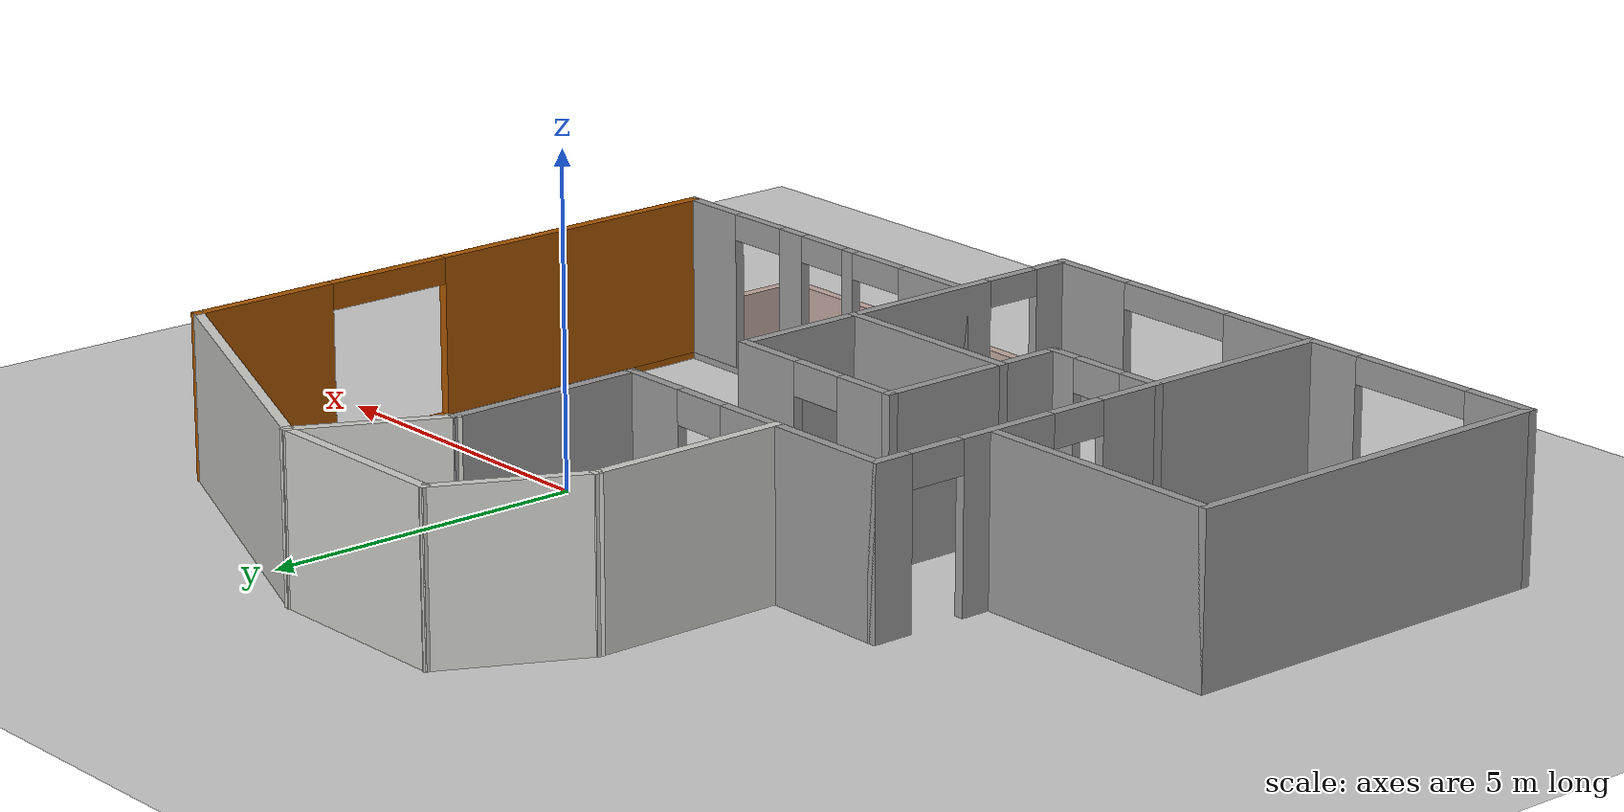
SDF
<sdf version="1.6">
 <world name="default">
  <model name="ground_plane">
   <static>1</static>
   <link name="link">
    <collision name="collision">
     <geometry><plane><normal>0 0 1</normal><size>100 100</size></plane></geometry>
     <surface><friction><ode><mu>100</mu><mu2>50</mu2></ode></friction></surface>
    </collision>
    <visual name="visual">
     <cast_shadows>0</cast_shadows>
     <geometry><plane><normal>0 0 1</normal><size>100 100</size></plane></geometry>
     <material>
      <script><uri>file://media/materials/scripts/gazebo.material</uri><name>Gazebo/Grey</name></script>
     </material>
    </visual>
   </link>
  </model>
  <model name="Building">
   <pose>-3.80091 -0.843794 0 0 -0 0</pose>
   <link name="Wall_0">
    <collision name="Wall_0_Collision">
     <geometry><box><size>6.15 0.15 2.5</size></box></geometry>
     <pose>0 0 1.25 0 -0 0</pose>
    </collision>
    <visual name="Wall_0_Visual">
     <pose>0 0 1.25 0 -0 0</pose>
     <geometry><box><size>6.15 0.15 2.5</size></box></geometry>
     <material>
      <script><uri>file://media/materials/scripts/gazebo.material</uri><name>Gazebo/Grey</name></script>
      <ambient>1 1 1 1</ambient>
     </material>
     <meta><layer>0</layer></meta>
    </visual>
    <pose>-7.51124 -3.51281 0 0 -0 1.5708</pose>
   </link>
   <link name="Wall_12">
    <pose>-3.01125 -6.51281 0 0 -0 0</pose>
    <visual name="Wall_12_Visual_0">
     <pose>-3.99854 0 1.25 0 -0 0</pose>
     <geometry><box><size>1.15292 0.15 2.5</size></box></geometry>
     <material>
      <script><uri>file://media/materials/scripts/gazebo.material</uri><name>Gazebo/Grey</name></script>
      <ambient>1 1 1 1</ambient>
     </material>
     <meta><layer>0</layer></meta>
    </visual>
    <collision name="Wall_12_Collision_0">
     <geometry><box><size>1.15292 0.15 2.5</size></box></geometry>
     <pose>-3.99854 0 1.25 0 -0 0</pose>
    </collision>
    <visual name="Wall_12_Visual_1">
     <pose>0.57646 0 0.05 0 -0 0</pose>
     <geometry><box><size>7.99708 0.15 0.1</size></box></geometry>
     <material>
      <script><uri>file://media/materials/scripts/gazebo.material</uri><name>Gazebo/Grey</name></script>
      <ambient>1 1 1 1</ambient>
     </material>
     <meta><layer>0</layer></meta>
    </visual>
    <collision name="Wall_12_Collision_1">
     <geometry><box><size>7.99708 0.15 0.1</size></box></geometry>
     <pose>0.57646 0 0.05 0 -0 0</pose>
    </collision>
    <visual name="Wall_12_Visual_2">
     <pose>-0.143108 0 1.3 0 -0 0</pose>
     <geometry><box><size>2.55794 0.15 2.4</size></box></geometry>
     <material>
      <script><uri>file://media/materials/scripts/gazebo.material</uri><name>Gazebo/Grey</name></script>
      <ambient>1 1 1 1</ambient>
     </material>
     <meta><layer>0</layer></meta>
    </visual>
    <collision name="Wall_12_Collision_2">
     <geometry><box><size>2.55794 0.15 2.4</size></box></geometry>
     <pose>-0.143108 0 1.3 0 -0 0</pose>
    </collision>
    <visual name="Wall_12_Visual_3">
     <pose>3.85543 0 1.3 0 -0 0</pose>
     <geometry><box><size>1.43914 0.15 2.4</size></box></geometry>
     <material>
      <script><uri>file://media/materials/scripts/gazebo.material</uri><name>Gazebo/Grey</name></script>
      <ambient>1 1 1 1</ambient>
     </material>
     <meta><layer>0</layer></meta>
    </visual>
    <collision name="Wall_12_Collision_3">
     <geometry><box><size>1.43914 0.15 2.4</size></box></geometry>
     <pose>3.85543 0 1.3 0 -0 0</pose>
    </collision>
    <visual name="Wall_12_Visual_4">
     <pose>-2.42208 0 2.3 0 -0 0</pose>
     <geometry><box><size>2 0.15 0.4</size></box></geometry>
     <material>
      <script><uri>file://media/materials/scripts/gazebo.material</uri><name>Gazebo/Grey</name></script>
      <ambient>1 1 1 1</ambient>
     </material>
     <meta><layer>0</layer></meta>
    </visual>
    <collision name="Wall_12_Collision_4">
     <geometry><box><size>2 0.15 0.4</size></box></geometry>
     <pose>-2.42208 0 2.3 0 -0 0</pose>
    </collision>
    <visual name="Wall_12_Visual_5">
     <pose>2.13586 0 2.3 0 -0 0</pose>
     <geometry><box><size>2 0.15 0.4</size></box></geometry>
     <material>
      <script><uri>file://media/materials/scripts/gazebo.material</uri><name>Gazebo/Grey</name></script>
      <ambient>1 1 1 1</ambient>
     </material>
     <meta><layer>0</layer></meta>
    </visual>
    <collision name="Wall_12_Collision_5">
     <geometry><box><size>2 0.15 0.4</size></box></geometry>
     <pose>2.13586 0 2.3 0 -0 0</pose>
    </collision>
   </link>
   <link name="Wall_26">
    <pose>1.48876 -3.51281 0 0 0 -1.5708</pose>
    <visual name="Wall_26_Visual_0">
     <pose>-0.780552 0 1.25 0 -0 0</pose>
     <geometry><box><size>4.58889 0.15 2.5</size></box></geometry>
     <material>
      <script><uri>file://media/materials/scripts/gazebo.material</uri><name>Gazebo/Grey</name></script>
      <ambient>1 1 1 1</ambient>
     </material>
     <meta><layer>0</layer></meta>
    </visual>
    <collision name="Wall_26_Collision_0">
     <geometry><box><size>4.58889 0.15 2.5</size></box></geometry>
     <pose>-0.780552 0 1.25 0 -0 0</pose>
    </collision>
    <visual name="Wall_26_Visual_1">
     <pose>2.29445 0 0.05 0 -0 0</pose>
     <geometry><box><size>1.5611 0.15 0.1</size></box></geometry>
     <material>
      <script><uri>file://media/materials/scripts/gazebo.material</uri><name>Gazebo/Grey</name></script>
      <ambient>1 1 1 1</ambient>
     </material>
     <meta><layer>0</layer></meta>
    </visual>
    <collision name="Wall_26_Collision_1">
     <geometry><box><size>1.5611 0.15 0.1</size></box></geometry>
     <pose>2.29445 0 0.05 0 -0 0</pose>
    </collision>
    <visual name="Wall_26_Visual_2">
     <pose>2.74445 0 1.3 0 -0 0</pose>
     <geometry><box><size>0.661105 0.15 2.4</size></box></geometry>
     <material>
      <script><uri>file://media/materials/scripts/gazebo.material</uri><name>Gazebo/Grey</name></script>
      <ambient>1 1 1 1</ambient>
     </material>
     <meta><layer>0</layer></meta>
    </visual>
    <collision name="Wall_26_Collision_2">
     <geometry><box><size>0.661105 0.15 2.4</size></box></geometry>
     <pose>2.74445 0 1.3 0 -0 0</pose>
    </collision>
    <visual name="Wall_26_Visual_3">
     <pose>1.96389 0 2.3 0 -0 0</pose>
     <geometry><box><size>0.9 0.15 0.4</size></box></geometry>
     <material>
      <script><uri>file://media/materials/scripts/gazebo.material</uri><name>Gazebo/Grey</name></script>
      <ambient>1 1 1 1</ambient>
     </material>
     <meta><layer>0</layer></meta>
    </visual>
    <collision name="Wall_26_Collision_3">
     <geometry><box><size>0.9 0.15 0.4</size></box></geometry>
     <pose>1.96389 0 2.3 0 -0 0</pose>
    </collision>
   </link>
   <link name="Wall_28">
    <collision name="Wall_28_Collision">
     <geometry><box><size>3.15 0.15 2.5</size></box></geometry>
     <pose>0 0 1.25 0 -0 0</pose>
    </collision>
    <visual name="Wall_28_Visual">
     <pose>0 0 1.25 0 -0 0</pose>
     <geometry><box><size>3.15 0.15 2.5</size></box></geometry>
     <material>
      <script><uri>file://media/materials/scripts/gazebo.material</uri><name>Gazebo/Grey</name></script>
      <ambient>1 1 1 1</ambient>
     </material>
     <meta><layer>0</layer></meta>
    </visual>
    <pose>1.48876 2.98719 0 0 -0 1.5708</pose>
   </link>
   <link name="Wall_30">
    <collision name="Wall_30_Collision">
     <geometry><box><size>2.38607 0.15 2.5</size></box></geometry>
     <pose>0 0 1.25 0 -0 0</pose>
    </collision>
    <visual name="Wall_30_Visual">
     <pose>0 0 1.25 0 -0 0</pose>
     <geometry><box><size>2.38607 0.15 2.5</size></box></geometry>
     <material>
      <script><uri>file://media/materials/scripts/gazebo.material</uri><name>Gazebo/CeilingTiled</name></script>
      <ambient>1 1 1 1</ambient>
     </material>
     <meta><layer>0</layer></meta>
    </visual>
    <pose>1.98876 5.48719 0 0 -0 1.10715</pose>
   </link>
   <link name="Wall_32">
    <pose>7.48876 -0.012811 0 0 0 -1.5708</pose>
    <visual name="Wall_32_Visual_0">
     <pose>-3.40699 0 1.25 0 -0 0</pose>
     <geometry><box><size>2.33601 0.15 2.5</size></box></geometry>
     <material>
      <script><uri>file://media/materials/scripts/gazebo.material</uri><name>Gazebo/Grey</name></script>
      <ambient>0.666667 0.333333 0 1</ambient>
     </material>
     <meta><layer>0</layer></meta>
    </visual>
    <collision name="Wall_32_Collision_0">
     <geometry><box><size>2.33601 0.15 2.5</size></box></geometry>
     <pose>-3.40699 0 1.25 0 -0 0</pose>
    </collision>
    <visual name="Wall_32_Visual_1">
     <pose>1.16801 0 0.05 0 -0 0</pose>
     <geometry><box><size>6.81399 0.15 0.1</size></box></geometry>
     <material>
      <script><uri>file://media/materials/scripts/gazebo.material</uri><name>Gazebo/Grey</name></script>
      <ambient>0.666667 0.333333 0 1</ambient>
     </material>
     <meta><layer>0</layer></meta>
    </visual>
    <collision name="Wall_32_Collision_1">
     <geometry><box><size>6.81399 0.15 0.1</size></box></geometry>
     <pose>1.16801 0 0.05 0 -0 0</pose>
    </collision>
    <visual name="Wall_32_Visual_2">
     <pose>2.16801 0 1.3 0 -0 0</pose>
     <geometry><box><size>4.81399 0.15 2.4</size></box></geometry>
     <material>
      <script><uri>file://media/materials/scripts/gazebo.material</uri><name>Gazebo/Grey</name></script>
      <ambient>0.666667 0.333333 0 1</ambient>
     </material>
     <meta><layer>0</layer></meta>
    </visual>
    <collision name="Wall_32_Collision_2">
     <geometry><box><size>4.81399 0.15 2.4</size></box></geometry>
     <pose>2.16801 0 1.3 0 -0 0</pose>
    </collision>
    <visual name="Wall_32_Visual_3">
     <pose>-1.23899 0 2.3 0 -0 0</pose>
     <geometry><box><size>2 0.15 0.4</size></box></geometry>
     <material>
      <script><uri>file://media/materials/scripts/gazebo.material</uri><name>Gazebo/Grey</name></script>
      <ambient>0.666667 0.333333 0 1</ambient>
     </material>
     <meta><layer>0</layer></meta>
    </visual>
    <collision name="Wall_32_Collision_3">
     <geometry><box><size>2 0.15 0.4</size></box></geometry>
     <pose>-1.23899 0 2.3 0 -0 0</pose>
    </collision>
   </link>
   <link name="Wall_34">
    <collision name="Wall_34_Collision">
     <geometry><box><size>6.15 0.15 0.8</size></box></geometry>
     <pose>0 0 0.4 0 -0 0</pose>
    </collision>
    <visual name="Wall_34_Visual">
     <pose>0 0 0.4 0 -0 0</pose>
     <geometry><box><size>6.15 0.15 0.8</size></box></geometry>
     <material>
      <script><uri>file://media/materials/scripts/gazebo.material</uri><name>Gazebo/Grey</name></script>
      <ambient>0.760784 0.662745 0.627451 1</ambient>
     </material>
     <meta><layer>0</layer></meta>
    </visual>
    <pose>4.48876 -6.51281 0 0 -0 0</pose>
   </link>
   <link name="Wall_36">
    <pose>4.48876 -4.51281 0 0 -0 0</pose>
    <visual name="Wall_36_Visual_0">
     <pose>-2.40473 0 1.25 0 -0 0</pose>
     <geometry><box><size>1.34055 0.15 2.5</size></box></geometry>
     <material>
      <script><uri>file://media/materials/scripts/gazebo.material</uri><name>Gazebo/Grey</name></script>
      <ambient>1 1 1 1</ambient>
     </material>
     <meta><layer>0</layer></meta>
    </visual>
    <collision name="Wall_36_Collision_0">
     <geometry><box><size>1.34055 0.15 2.5</size></box></geometry>
     <pose>-2.40473 0 1.25 0 -0 0</pose>
    </collision>
    <visual name="Wall_36_Visual_1">
     <pose>0.670272 0 0.05 0 -0 0</pose>
     <geometry><box><size>4.80945 0.15 0.1</size></box></geometry>
     <material>
      <script><uri>file://media/materials/scripts/gazebo.material</uri><name>Gazebo/Grey</name></script>
      <ambient>1 1 1 1</ambient>
     </material>
     <meta><layer>0</layer></meta>
    </visual>
    <collision name="Wall_36_Collision_1">
     <geometry><box><size>4.80945 0.15 0.1</size></box></geometry>
     <pose>0.670272 0 0.05 0 -0 0</pose>
    </collision>
    <visual name="Wall_36_Visual_2">
     <pose>-0.610532 0 1.3 0 -0 0</pose>
     <geometry><box><size>0.247846 0.15 2.4</size></box></geometry>
     <material>
      <script><uri>file://media/materials/scripts/gazebo.material</uri><name>Gazebo/Grey</name></script>
      <ambient>1 1 1 1</ambient>
     </material>
     <meta><layer>0</layer></meta>
    </visual>
    <collision name="Wall_36_Collision_2">
     <geometry><box><size>0.247846 0.15 2.4</size></box></geometry>
     <pose>-0.610532 0 1.3 0 -0 0</pose>
    </collision>
    <visual name="Wall_36_Visual_3">
     <pose>0.670143 0 1.3 0 -0 0</pose>
     <geometry><box><size>0.513504 0.15 2.4</size></box></geometry>
     <material>
      <script><uri>file://media/materials/scripts/gazebo.material</uri><name>Gazebo/Grey</name></script>
      <ambient>1 1 1 1</ambient>
     </material>
     <meta><layer>0</layer></meta>
    </visual>
    <collision name="Wall_36_Collision_3">
     <geometry><box><size>0.513504 0.15 2.4</size></box></geometry>
     <pose>0.670143 0 1.3 0 -0 0</pose>
    </collision>
    <visual name="Wall_36_Visual_4">
     <pose>2.50095 0 1.3 0 -0 0</pose>
     <geometry><box><size>1.1481 0.15 2.4</size></box></geometry>
     <material>
      <script><uri>file://media/materials/scripts/gazebo.material</uri><name>Gazebo/Grey</name></script>
      <ambient>1 1 1 1</ambient>
     </material>
     <meta><layer>0</layer></meta>
    </visual>
    <collision name="Wall_36_Collision_4">
     <geometry><box><size>1.1481 0.15 2.4</size></box></geometry>
     <pose>2.50095 0 1.3 0 -0 0</pose>
    </collision>
    <visual name="Wall_36_Visual_5">
     <pose>-1.23446 0 2.3 0 -0 0</pose>
     <geometry><box><size>1 0.15 0.4</size></box></geometry>
     <material>
      <script><uri>file://media/materials/scripts/gazebo.material</uri><name>Gazebo/Grey</name></script>
      <ambient>1 1 1 1</ambient>
     </material>
     <meta><layer>0</layer></meta>
    </visual>
    <collision name="Wall_36_Collision_5">
     <geometry><box><size>1 0.15 0.4</size></box></geometry>
     <pose>-1.23446 0 2.3 0 -0 0</pose>
    </collision>
    <visual name="Wall_36_Visual_6">
     <pose>-0.036609 0 2.3 0 -0 0</pose>
     <geometry><box><size>0.9 0.15 0.4</size></box></geometry>
     <material>
      <script><uri>file://media/materials/scripts/gazebo.material</uri><name>Gazebo/Grey</name></script>
      <ambient>1 1 1 1</ambient>
     </material>
     <meta><layer>0</layer></meta>
    </visual>
    <collision name="Wall_36_Collision_6">
     <geometry><box><size>0.9 0.15 0.4</size></box></geometry>
     <pose>-0.036609 0 2.3 0 -0 0</pose>
    </collision>
    <visual name="Wall_36_Visual_7">
     <pose>1.4269 0 2.3 0 -0 0</pose>
     <geometry><box><size>1 0.15 0.4</size></box></geometry>
     <material>
      <script><uri>file://media/materials/scripts/gazebo.material</uri><name>Gazebo/Grey</name></script>
      <ambient>1 1 1 1</ambient>
     </material>
     <meta><layer>0</layer></meta>
    </visual>
    <collision name="Wall_36_Collision_7">
     <geometry><box><size>1 0.15 0.4</size></box></geometry>
     <pose>1.4269 0 2.3 0 -0 0</pose>
    </collision>
   </link>
   <link name="Wall_38">
    <pose>-1.01124 1.48719 0 0 -0 0</pose>
    <visual name="Wall_38_Visual_0">
     <pose>-1.0103 0 1.25 0 -0 0</pose>
     <geometry><box><size>3.1294 0.15 2.5</size></box></geometry>
     <material>
      <script><uri>file://media/materials/scripts/gazebo.material</uri><name>Gazebo/Grey</name></script>
      <ambient>1 1 1 1</ambient>
     </material>
     <meta><layer>0</layer></meta>
    </visual>
    <collision name="Wall_38_Collision_0">
     <geometry><box><size>3.1294 0.15 2.5</size></box></geometry>
     <pose>-1.0103 0 1.25 0 -0 0</pose>
    </collision>
    <visual name="Wall_38_Visual_1">
     <pose>2.0147 0 1.25 0 -0 0</pose>
     <geometry><box><size>1.1206 0.15 2.5</size></box></geometry>
     <material>
      <script><uri>file://media/materials/scripts/gazebo.material</uri><name>Gazebo/Grey</name></script>
      <ambient>1 1 1 1</ambient>
     </material>
     <meta><layer>0</layer></meta>
    </visual>
    <collision name="Wall_38_Collision_1">
     <geometry><box><size>1.1206 0.15 2.5</size></box></geometry>
     <pose>2.0147 0 1.25 0 -0 0</pose>
    </collision>
    <visual name="Wall_38_Visual_2">
     <pose>1.0044 0 2.25 0 -0 0</pose>
     <geometry><box><size>0.9 0.15 0.5</size></box></geometry>
     <material>
      <script><uri>file://media/materials/scripts/gazebo.material</uri><name>Gazebo/Grey</name></script>
      <ambient>1 1 1 1</ambient>
     </material>
     <meta><layer>0</layer></meta>
    </visual>
    <collision name="Wall_38_Collision_2">
     <geometry><box><size>0.9 0.15 0.5</size></box></geometry>
     <pose>1.0044 0 2.25 0 -0 0</pose>
    </collision>
   </link>
   <link name="Wall_4">
    <pose>-3.51125 -2.51281 0 0 -0 1.5708</pose>
    <visual name="Wall_4_Visual_0">
     <pose>-2.02622 0 1.25 0 -0 0</pose>
     <geometry><box><size>4.09757 0.15 2.5</size></box></geometry>
     <material>
      <script><uri>file://media/materials/scripts/gazebo.material</uri><name>Gazebo/Grey</name></script>
      <ambient>1 1 1 1</ambient>
     </material>
     <meta><layer>0</layer></meta>
    </visual>
    <collision name="Wall_4_Collision_0">
     <geometry><box><size>4.09757 0.15 2.5</size></box></geometry>
     <pose>-2.02622 0 1.25 0 -0 0</pose>
    </collision>
    <visual name="Wall_4_Visual_1">
     <pose>1.72967 0 1.25 0 -0 0</pose>
     <geometry><box><size>1.6142 0.15 2.5</size></box></geometry>
     <material>
      <script><uri>file://media/materials/scripts/gazebo.material</uri><name>Gazebo/Grey</name></script>
      <ambient>1 1 1 1</ambient>
     </material>
     <meta><layer>0</layer></meta>
    </visual>
    <collision name="Wall_4_Collision_1">
     <geometry><box><size>1.6142 0.15 2.5</size></box></geometry>
     <pose>1.72967 0 1.25 0 -0 0</pose>
    </collision>
    <visual name="Wall_4_Visual_2">
     <pose>3.75588 0 1.25 0 -0 0</pose>
     <geometry><box><size>0.638237 0.15 2.5</size></box></geometry>
     <material>
      <script><uri>file://media/materials/scripts/gazebo.material</uri><name>Gazebo/Grey</name></script>
      <ambient>1 1 1 1</ambient>
     </material>
     <meta><layer>0</layer></meta>
    </visual>
    <collision name="Wall_4_Collision_2">
     <geometry><box><size>0.638237 0.15 2.5</size></box></geometry>
     <pose>3.75588 0 1.25 0 -0 0</pose>
    </collision>
    <visual name="Wall_4_Visual_3">
     <pose>0.472567 0 2.25 0 -0 0</pose>
     <geometry><box><size>0.9 0.15 0.5</size></box></geometry>
     <material>
      <script><uri>file://media/materials/scripts/gazebo.material</uri><name>Gazebo/Grey</name></script>
      <ambient>1 1 1 1</ambient>
     </material>
     <meta><layer>0</layer></meta>
    </visual>
    <collision name="Wall_4_Collision_3">
     <geometry><box><size>0.9 0.15 0.5</size></box></geometry>
     <pose>0.472567 0 2.25 0 -0 0</pose>
    </collision>
    <visual name="Wall_4_Visual_4">
     <pose>2.98676 0 2.25 0 -0 0</pose>
     <geometry><box><size>0.9 0.15 0.5</size></box></geometry>
     <material>
      <script><uri>file://media/materials/scripts/gazebo.material</uri><name>Gazebo/Grey</name></script>
      <ambient>1 1 1 1</ambient>
     </material>
     <meta><layer>0</layer></meta>
    </visual>
    <collision name="Wall_4_Collision_4">
     <geometry><box><size>0.9 0.15 0.5</size></box></geometry>
     <pose>2.98676 0 2.25 0 -0 0</pose>
    </collision>
   </link>
   <link name="Wall_40">
    <pose>-0.011245 -0.512811 0 0 -0 0</pose>
    <visual name="Wall_40_Visual_0">
     <pose>-1.04047 0 1.25 0 -0 0</pose>
     <geometry><box><size>1.06906 0.15 2.5</size></box></geometry>
     <material>
      <script><uri>file://media/materials/scripts/gazebo.material</uri><name>Gazebo/Grey</name></script>
      <ambient>1 1 1 1</ambient>
     </material>
     <meta><layer>0</layer></meta>
    </visual>
    <collision name="Wall_40_Collision_0">
     <geometry><box><size>1.06906 0.15 2.5</size></box></geometry>
     <pose>-1.04047 0 1.25 0 -0 0</pose>
    </collision>
    <visual name="Wall_40_Visual_1">
     <pose>0.984528 0 1.25 0 -0 0</pose>
     <geometry><box><size>1.18094 0.15 2.5</size></box></geometry>
     <material>
      <script><uri>file://media/materials/scripts/gazebo.material</uri><name>Gazebo/Grey</name></script>
      <ambient>1 1 1 1</ambient>
     </material>
     <meta><layer>0</layer></meta>
    </visual>
    <collision name="Wall_40_Collision_1">
     <geometry><box><size>1.18094 0.15 2.5</size></box></geometry>
     <pose>0.984528 0 1.25 0 -0 0</pose>
    </collision>
    <visual name="Wall_40_Visual_2">
     <pose>-0.055943 0 2.25 0 -0 0</pose>
     <geometry><box><size>0.9 0.15 0.5</size></box></geometry>
     <material>
      <script><uri>file://media/materials/scripts/gazebo.material</uri><name>Gazebo/Grey</name></script>
      <ambient>1 1 1 1</ambient>
     </material>
     <meta><layer>0</layer></meta>
    </visual>
    <collision name="Wall_40_Collision_2">
     <geometry><box><size>0.9 0.15 0.5</size></box></geometry>
     <pose>-0.055943 0 2.25 0 -0 0</pose>
    </collision>
   </link>
   <link name="Wall_42">
    <collision name="Wall_42_Collision">
     <geometry><box><size>3.15 0.15 2.5</size></box></geometry>
     <pose>0 0 1.25 0 -0 0</pose>
    </collision>
    <visual name="Wall_42_Visual">
     <pose>0 0 1.25 0 -0 0</pose>
     <geometry><box><size>3.15 0.15 2.5</size></box></geometry>
     <material>
      <script><uri>file://media/materials/scripts/gazebo.material</uri><name>Gazebo/Grey</name></script>
      <ambient>1 1 1 1</ambient>
     </material>
     <meta><layer>0</layer></meta>
    </visual>
    <pose>-0.011245 -2.51281 0 0 -0 0</pose>
   </link>
   <link name="Wall_44">
    <collision name="Wall_44_Collision">
     <geometry><box><size>3.15 0.15 2.5</size></box></geometry>
     <pose>0 0 1.25 0 -0 0</pose>
    </collision>
    <visual name="Wall_44_Visual">
     <pose>0 0 1.25 0 -0 0</pose>
     <geometry><box><size>3.15 0.15 2.5</size></box></geometry>
     <material>
      <script><uri>file://media/materials/scripts/gazebo.material</uri><name>Gazebo/Grey</name></script>
      <ambient>1 1 1 1</ambient>
     </material>
     <meta><layer>0</layer></meta>
    </visual>
    <pose>-1.51124 -2.01281 0 0 0 -1.5708</pose>
   </link>
   <link name="Wall_46">
    <pose>-2.51125 -3.51281 0 0 -0 0</pose>
    <visual name="Wall_46_Visual_0">
     <pose>-0.727172 0 1.25 0 -0 0</pose>
     <geometry><box><size>0.695655 0.15 2.5</size></box></geometry>
     <material>
      <script><uri>file://media/materials/scripts/gazebo.material</uri><name>Gazebo/Grey</name></script>
      <ambient>1 1 1 1</ambient>
     </material>
     <meta><layer>0</layer></meta>
    </visual>
    <collision name="Wall_46_Collision_0">
     <geometry><box><size>0.695655 0.15 2.5</size></box></geometry>
     <pose>-0.727172 0 1.25 0 -0 0</pose>
    </collision>
    <visual name="Wall_46_Visual_1">
     <pose>0.797828 0 1.25 0 -0 0</pose>
     <geometry><box><size>0.554345 0.15 2.5</size></box></geometry>
     <material>
      <script><uri>file://media/materials/scripts/gazebo.material</uri><name>Gazebo/Grey</name></script>
      <ambient>1 1 1 1</ambient>
     </material>
     <meta><layer>0</layer></meta>
    </visual>
    <collision name="Wall_46_Collision_1">
     <geometry><box><size>0.554345 0.15 2.5</size></box></geometry>
     <pose>0.797828 0 1.25 0 -0 0</pose>
    </collision>
    <visual name="Wall_46_Visual_2">
     <pose>0.070655 0 2.25 0 -0 0</pose>
     <geometry><box><size>0.9 0.15 0.5</size></box></geometry>
     <material>
      <script><uri>file://media/materials/scripts/gazebo.material</uri><name>Gazebo/Grey</name></script>
      <ambient>1 1 1 1</ambient>
     </material>
     <meta><layer>0</layer></meta>
    </visual>
    <collision name="Wall_46_Collision_2">
     <geometry><box><size>0.9 0.15 0.5</size></box></geometry>
     <pose>0.070655 0 2.25 0 -0 0</pose>
    </collision>
   </link>
   <link name="Wall_48">
    <collision name="Wall_48_Collision">
     <geometry><box><size>4.15 0.15 2.5</size></box></geometry>
     <pose>0 0 1.25 0 -0 0</pose>
    </collision>
    <visual name="Wall_48_Visual">
     <pose>0 0 1.25 0 -0 0</pose>
     <geometry><box><size>4.15 0.15 2.5</size></box></geometry>
     <material>
      <script><uri>file://media/materials/scripts/gazebo.material</uri><name>Gazebo/Grey</name></script>
      <ambient>1 1 1 1</ambient>
     </material>
     <meta><layer>0</layer></meta>
    </visual>
    <pose>-5.51124 -0.512811 0 0 -0 0</pose>
   </link>
   <link name="Wall_50">
    <collision name="Wall_50_Collision">
     <geometry><box><size>3.15 0.15 2.5</size></box></geometry>
     <pose>0 0 1.25 0 -0 0</pose>
    </collision>
    <visual name="Wall_50_Visual">
     <pose>0 0 1.25 0 -0 0</pose>
     <geometry><box><size>3.15 0.15 2.5</size></box></geometry>
     <material>
      <script><uri>file://media/materials/scripts/gazebo.material</uri><name>Gazebo/CeilingTiled</name></script>
      <ambient>1 1 1 1</ambient>
     </material>
     <meta><layer>0</layer></meta>
    </visual>
    <pose>0.988755 6.48719 0 0 -0 0</pose>
   </link>
   <link name="Wall_52">
    <collision name="Wall_52_Collision">
     <geometry><box><size>5.53517 0.15 2.5</size></box></geometry>
     <pose>0 0 1.25 0 -0 0</pose>
    </collision>
    <visual name="Wall_52_Visual">
     <pose>0 0 1.25 0 -0 0</pose>
     <geometry><box><size>5.53517 0.15 2.5</size></box></geometry>
     <material>
      <script><uri>file://media/materials/scripts/gazebo.material</uri><name>Gazebo/CeilingTiled</name></script>
      <ambient>1 1 1 1</ambient>
     </material>
     <meta><layer>0</layer></meta>
    </visual>
    <pose>4.98876 5.48719 0 0 0 -0.380506</pose>
   </link>
   <link name="Wall_54">
    <collision name="Wall_54_Collision">
     <geometry><box><size>2.15 0.15 0.8</size></box></geometry>
     <pose>0 0 0.4 0 -0 0</pose>
    </collision>
    <visual name="Wall_54_Visual">
     <pose>0 0 0.4 0 -0 0</pose>
     <geometry><box><size>2.15 0.15 0.8</size></box></geometry>
     <material>
      <script><uri>file://media/materials/scripts/gazebo.material</uri><name>Gazebo/Grey</name></script>
      <ambient>0.760784 0.662745 0.627451 1</ambient>
     </material>
     <meta><layer>0</layer></meta>
    </visual>
    <pose>7.48876 -5.51281 0 0 0 -1.5708</pose>
   </link>
   <link name="Wall_6">
    <collision name="Wall_6_Collision">
     <geometry><box><size>2.38607 0.15 2.5</size></box></geometry>
     <pose>0 0 1.25 0 -0 0</pose>
    </collision>
    <visual name="Wall_6_Visual">
     <pose>0 0 1.25 0 -0 0</pose>
     <geometry><box><size>2.38607 0.15 2.5</size></box></geometry>
     <material>
      <script><uri>file://media/materials/scripts/gazebo.material</uri><name>Gazebo/CeilingTiled</name></script>
      <ambient>1 1 1 1</ambient>
     </material>
     <meta><layer>0</layer></meta>
    </visual>
    <pose>-1.01124 5.48719 0 0 -0 1.10715</pose>
   </link>
   <link name="Wall_7">
    <collision name="Wall_7_Collision">
     <geometry><box><size>0.15 0.15 2.5</size></box></geometry>
     <pose>0 0 1.25 0 -0 0</pose>
    </collision>
    <visual name="Wall_7_Visual">
     <pose>0 0 1.25 0 -0 0</pose>
     <geometry><box><size>0.15 0.15 2.5</size></box></geometry>
     <material>
      <script><uri>file://media/materials/scripts/gazebo.material</uri><name>Gazebo/Grey</name></script>
      <ambient>1 1 1 1</ambient>
     </material>
     <meta><layer>0</layer></meta>
    </visual>
    <pose>-0.511245 6.48719 0 0 -0 0</pose>
   </link>
   <link name="Wall_9">
    <collision name="Wall_9_Collision">
     <geometry><box><size>3.15 0.15 2.5</size></box></geometry>
     <pose>0 0 1.25 0 -0 0</pose>
    </collision>
    <visual name="Wall_9_Visual">
     <pose>0 0 1.25 0 -0 0</pose>
     <geometry><box><size>3.15 0.15 2.5</size></box></geometry>
     <material>
      <script><uri>file://media/materials/scripts/gazebo.material</uri><name>Gazebo/CeilingTiled</name></script>
      <ambient>1 1 1 1</ambient>
     </material>
     <meta><layer>0</layer></meta>
    </visual>
    <pose>-1.51124 2.98719 0 0 0 -1.5708</pose>
   </link>
   <static>1</static>
  </model>
  <model name="cabinet">
   <static>1</static>
   <link name="cabinet_bottom_plate">
    <inertial>
     <pose>0 0 -1 0 -0 0</pose>
     <inertia><ixx>2.05</ixx><ixy>0</ixy><ixz>0</ixz><iyy>2.05</iyy><iyz>0</iyz><izz>2.05</izz></inertia>
     <mass>25</mass>
    </inertial>
    <collision name="cabinet_bottom_plate_geom">
     <pose>0 0 0.01 0 -0 0</pose>
     <geometry><box><size>0.45 0.45 0.02</size></box></geometry>
    </collision>
    <visual name="cabinet_bottom_plate_geom_visual">
     <pose>0 0 0.01 0 -0 0</pose>
     <geometry><box><size>0.45 0.45 0.02</size></box></geometry>
     <material>
      <script><uri>file://media/materials/scripts/gazebo.material</uri><name>Gazebo/Wood</name></script>
     </material>
    </visual>
    <collision name="cabinet_bottom_plate_geom_cabinet_back_plate">
     <pose>0.235 0 0.51 0 -0 0</pose>
     <geometry><box><size>0.02 0.45 1.02</size></box></geometry>
    </collision>
    <visual name="cabinet_bottom_plate_geom_cabinet_back_plate_visual">
     <pose>0.235 0 0.51 0 -0 0</pose>
     <geometry><box><size>0.02 0.45 1.02</size></box></geometry>
     <material>
      <script><uri>file://media/materials/scripts/gazebo.material</uri><name>Gazebo/Wood</name></script>
     </material>
    </visual>
    <collision name="cabinet_bottom_plate_geom_cabinet_left_plate">
     <pose>0 0.235 0.51 0 -0 0</pose>
     <geometry><box><size>0.45 0.02 1.02</size></box></geometry>
    </collision>
    <visual name="cabinet_bottom_plate_geom_cabinet_left_plate_visual">
     <pose>0 0.235 0.51 0 -0 0</pose>
     <geometry><box><size>0.45 0.02 1.02</size></box></geometry>
     <material>
      <script><uri>file://media/materials/scripts/gazebo.material</uri><name>Gazebo/Wood</name></script>
     </material>
    </visual>
    <collision name="cabinet_bottom_plate_geom_cabinet_middle_plate">
     <pose>0 0 0.51 0 -0 0</pose>
     <geometry><box><size>0.45 0.45 0.02</size></box></geometry>
    </collision>
    <visual name="cabinet_bottom_plate_geom_cabinet_middle_plate_visual">
     <pose>0 0 0.51 0 -0 0</pose>
     <geometry><box><size>0.45 0.45 0.02</size></box></geometry>
     <material>
      <script><uri>file://media/materials/scripts/gazebo.material</uri><name>Gazebo/Wood</name></script>
     </material>
    </visual>
    <collision name="cabinet_bottom_plate_geom_cabinet_right_plate">
     <pose>0 -0.235 0.51 0 -0 0</pose>
     <geometry><box><size>0.45 0.02 1.02</size></box></geometry>
    </collision>
    <visual name="cabinet_bottom_plate_geom_cabinet_right_plate_visual">
     <pose>0 -0.235 0.51 0 -0 0</pose>
     <geometry><box><size>0.45 0.02 1.02</size></box></geometry>
     <material>
      <script><uri>file://media/materials/scripts/gazebo.material</uri><name>Gazebo/Wood</name></script>
     </material>
    </visual>
    <collision name="cabinet_bottom_plate_geom_cabinet_top_plate">
     <pose>0 0 1.01 0 -0 0</pose>
     <geometry><box><size>0.45 0.45 0.02</size></box></geometry>
    </collision>
    <visual name="cabinet_bottom_plate_geom_cabinet_top_plate_visual">
     <pose>0 0 1.01 0 -0 0</pose>
     <geometry><box><size>0.45 0.45 0.02</size></box></geometry>
     <material>
      <script><uri>file://media/materials/scripts/gazebo.material</uri><name>Gazebo/Wood</name></script>
     </material>
    </visual>
   </link>
   <pose>-5.60018 -6.32198 0 0 -0 0</pose>
  </model>
  <model name="bookshelf">
   <static>1</static>
   <link name="link">
    <inertial><mass>1</mass></inertial>
    <collision name="back">
     <pose>0 0.005 0.6 0 -0 0</pose>
     <geometry><box><size>0.9 0.01 1.2</size></box></geometry>
    </collision>
    <visual name="visual1">
     <pose>0 0.005 0.6 0 -0 0</pose>
     <geometry><box><size>0.9 0.01 1.2</size></box></geometry>
     <material>
      <script><uri>file://media/materials/scripts/gazebo.material</uri><name>Gazebo/Wood</name></script>
     </material>
    </visual>
    <collision name="left_side">
     <pose>0.45 -0.195 0.6 0 -0 0</pose>
     <geometry><box><size>0.02 0.4 1.2</size></box></geometry>
    </collision>
    <visual name="visual2">
     <pose>0.45 -0.195 0.6 0 -0 0</pose>
     <geometry><box><size>0.02 0.4 1.2</size></box></geometry>
     <material>
      <script><uri>file://media/materials/scripts/gazebo.material</uri><name>Gazebo/Wood</name></script>
     </material>
    </visual>
    <collision name="right_side">
     <pose>-0.45 -0.195 0.6 0 -0 0</pose>
     <geometry><box><size>0.02 0.4 1.2</size></box></geometry>
    </collision>
    <visual name="visual3">
     <pose>-0.45 -0.195 0.6 0 -0 0</pose>
     <geometry><box><size>0.02 0.4 1.2</size></box></geometry>
     <material>
      <script><uri>file://media/materials/scripts/gazebo.material</uri><name>Gazebo/Wood</name></script>
     </material>
    </visual>
    <collision name="bottom">
     <pose>0 -0.195 0.03 0 -0 0</pose>
     <geometry><box><size>0.88 0.4 0.06</size></box></geometry>
    </collision>
    <visual name="visual4">
     <pose>0 -0.195 0.03 0 -0 0</pose>
     <geometry><box><size>0.88 0.4 0.06</size></box></geometry>
     <material>
      <script><uri>file://media/materials/scripts/gazebo.material</uri><name>Gazebo/Wood</name></script>
     </material>
    </visual>
    <collision name="top">
     <pose>0 -0.195 1.19 0 -0 0</pose>
     <geometry><box><size>0.88 0.4 0.02</size></box></geometry>
    </collision>
    <visual name="visual5">
     <pose>0 -0.195 1.19 0 -0 0</pose>
     <geometry><box><size>0.88 0.4 0.02</size></box></geometry>
     <material>
      <script><uri>file://media/materials/scripts/gazebo.material</uri><name>Gazebo/Wood</name></script>
     </material>
    </visual>
    <collision name="low_shelf">
     <pose>0 -0.195 0.43 0 -0 0</pose>
     <geometry><box><size>0.88 0.4 0.02</size></box></geometry>
    </collision>
    <visual name="visual6">
     <pose>0 -0.195 0.43 0 -0 0</pose>
     <geometry><box><size>0.88 0.4 0.02</size></box></geometry>
     <material>
      <script><uri>file://media/materials/scripts/gazebo.material</uri><name>Gazebo/Wood</name></script>
     </material>
    </visual>
    <collision name="high_shelf">
     <pose>0 -0.195 0.8 0 -0 0</pose>
     <geometry><box><size>0.88 0.4 0.02</size></box></geometry>
    </collision>
    <visual name="visual7">
     <pose>0 -0.195 0.8 0 -0 0</pose>
     <geometry><box><size>0.88 0.4 0.02</size></box></geometry>
     <material>
      <script><uri>file://media/materials/scripts/gazebo.material</uri><name>Gazebo/Wood</name></script>
     </material>
    </visual>
   </link>
   <pose>-3.09916 -4.03573 0 0 -0 0</pose>
  </model>
 </world>
</sdf>
